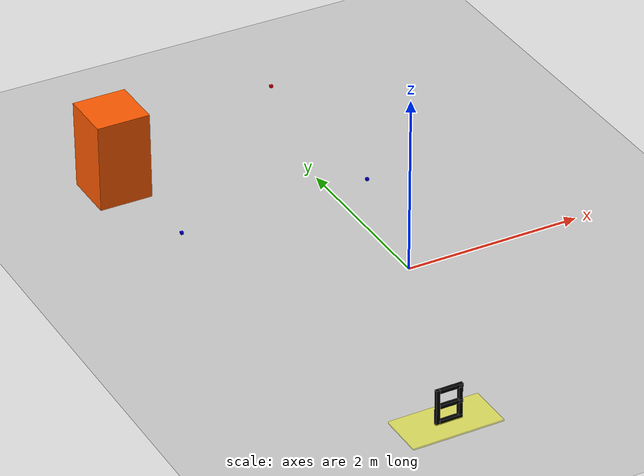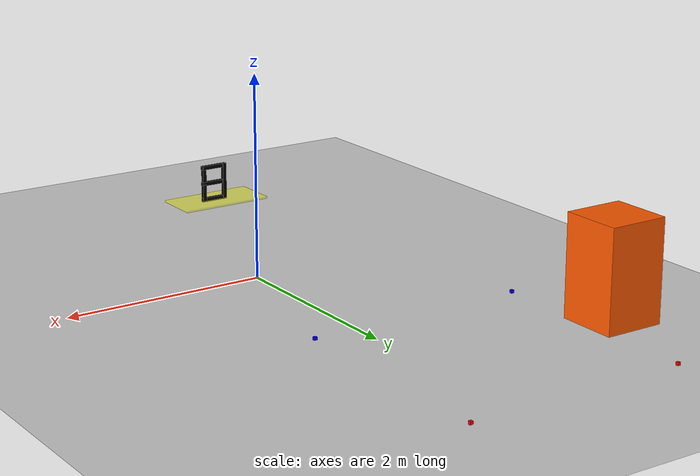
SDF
<sdf version="1.7">
 <world name="my_world">
  <model name="ground_plane">
   <static>1</static>
   <link name="link">
    <collision name="collision">
     <geometry><plane><normal>0 0 1</normal><size>100 100</size></plane></geometry>
     <surface>
      <contact><collide_bitmask>65535</collide_bitmask></contact>
      <friction><ode><mu>100</mu><mu2>50</mu2></ode></friction>
     </surface>
    </collision>
    <visual name="visual">
     <cast_shadows>0</cast_shadows>
     <geometry><plane><normal>0 0 1</normal><size>100 100</size></plane></geometry>
     <material>
      <script><uri>file://media/materials/scripts/gazebo.material</uri><name>Gazebo/Grey</name></script>
     </material>
    </visual>
   </link>
  </model>
  <model name="red_cube_4">
   <pose>-1.75 3.9 0.015 -2.2e-05 3e-06 0</pose>
   <link name="link">
    <inertial>
     <mass>0.005</mass>
     <inertia><ixx>1</ixx><ixy>0</ixy><ixz>0</ixz><iyy>1</iyy><iyz>0</iyz><izz>1</izz></inertia>
    </inertial>
    <collision name="collision">
     <geometry><box><size>0.03 0.03 0.03</size></box></geometry>
     <surface>
      <friction><ode><mu>0.1</mu><mu2>0.1</mu2></ode></friction>
      <contact><ode><kp>10000</kp><kd>10</kd><max_vel>0.01</max_vel><min_depth>0.02</min_depth></ode></contact>
     </surface>
    </collision>
    <visual name="visual">
     <geometry><box><size>0.03 0.03 0.03</size></box></geometry>
     <material><ambient>1 0 0 1</ambient><diffuse>1 0 0 1</diffuse></material>
    </visual>
   </link>
  </model>
  <model name="red_cube_5">
   <pose>0.45 3.9 0.015 -2.2e-05 3e-06 0</pose>
   <link name="link">
    <inertial>
     <mass>0.005</mass>
     <inertia><ixx>1</ixx><ixy>0</ixy><ixz>0</ixz><iyy>1</iyy><iyz>0</iyz><izz>1</izz></inertia>
    </inertial>
    <collision name="collision">
     <geometry><box><size>0.03 0.03 0.03</size></box></geometry>
     <surface>
      <friction><ode><mu>0.1</mu><mu2>0.1</mu2></ode></friction>
      <contact><ode><kp>10000</kp><kd>10</kd><max_vel>0.01</max_vel><min_depth>0.02</min_depth></ode></contact>
     </surface>
    </collision>
    <visual name="visual">
     <geometry><box><size>0.03 0.03 0.03</size></box></geometry>
     <material><ambient>1 0 0 1</ambient><diffuse>1 0 0 1</diffuse></material>
    </visual>
   </link>
  </model>
  <model name="blue_cube_4">
   <pose>-1.75 1.7 0.015 -2.2e-05 3e-06 0</pose>
   <link name="link">
    <inertial>
     <mass>0.005</mass>
     <inertia><ixx>1</ixx><ixy>0</ixy><ixz>0</ixz><iyy>1</iyy><iyz>0</iyz><izz>1</izz></inertia>
    </inertial>
    <collision name="collision">
     <geometry><box><size>0.03 0.03 0.03</size></box></geometry>
     <surface>
      <friction><ode><mu>0.1</mu><mu2>0.1</mu2></ode></friction>
      <contact><ode><kp>10000</kp><kd>10</kd><max_vel>0.01</max_vel><min_depth>0.02</min_depth></ode></contact>
     </surface>
    </collision>
    <visual name="visual">
     <geometry><box><size>0.03 0.03 0.03</size></box></geometry>
     <material><ambient>0 0 1 1</ambient><diffuse>0 0 1 1</diffuse></material>
    </visual>
   </link>
  </model>
  <model name="blue_cube_5">
   <pose>0.45 1.7 0.015 -2.2e-05 3e-06 0</pose>
   <link name="link">
    <inertial>
     <mass>0.005</mass>
     <inertia><ixx>1</ixx><ixy>0</ixy><ixz>0</ixz><iyy>1</iyy><iyz>0</iyz><izz>1</izz></inertia>
    </inertial>
    <collision name="collision">
     <geometry><box><size>0.03 0.03 0.03</size></box></geometry>
     <surface>
      <friction><ode><mu>0.1</mu><mu2>0.1</mu2></ode></friction>
      <contact><ode><kp>10000</kp><kd>10</kd><max_vel>0.01</max_vel><min_depth>0.02</min_depth></ode></contact>
     </surface>
    </collision>
    <visual name="visual">
     <geometry><box><size>0.03 0.03 0.03</size></box></geometry>
     <material><ambient>0 0 1 1</ambient><diffuse>0 0 1 1</diffuse></material>
    </visual>
   </link>
  </model>
  <model name="zone_b">
   <static>1</static>
   <pose>-1 -2.5 0.01 0 -0 0</pose>
   <link name="base">
    <visual name="visual">
     <geometry><box><size>1 0.5 0.02</size></box></geometry>
     <material><ambient>1 1 0 0.5</ambient><diffuse>1 1 0 0.5</diffuse></material>
    </visual>
   </link>
   <link name="letter_B_vertical_stroke">
    <pose>-0.1 0 0.2 0 -0 0</pose>
    <visual name="v">
     <geometry><box><size>0.04 0.04 0.4</size></box></geometry>
     <material><ambient>0 0 0 1</ambient><diffuse>0 0 0 1</diffuse></material>
    </visual>
   </link>
   <link name="letter_B_top_horizontal">
    <pose>0.05 0 0.38 0 -0 0</pose>
    <visual name="v">
     <geometry><box><size>0.25 0.04 0.04</size></box></geometry>
     <material><ambient>0 0 0 1</ambient><diffuse>0 0 0 1</diffuse></material>
    </visual>
   </link>
   <link name="letter_B_middle_horizontal">
    <pose>0.05 0 0.2 0 -0 0</pose>
    <visual name="v">
     <geometry><box><size>0.25 0.04 0.04</size></box></geometry>
     <material><ambient>0 0 0 1</ambient><diffuse>0 0 0 1</diffuse></material>
    </visual>
   </link>
   <link name="letter_B_bottom_horizontal">
    <pose>0.05 0 0.02 0 -0 0</pose>
    <visual name="v">
     <geometry><box><size>0.25 0.04 0.04</size></box></geometry>
     <material><ambient>0 0 0 1</ambient><diffuse>0 0 0 1</diffuse></material>
    </visual>
   </link>
   <link name="letter_B_top_vertical_stroke">
    <pose>0.15 0 0.29 0 -0 0</pose>
    <visual name="v">
     <geometry><box><size>0.04 0.04 0.2</size></box></geometry>
     <material><ambient>0 0 0 1</ambient><diffuse>0 0 0 1</diffuse></material>
    </visual>
   </link>
   <link name="letter_B_bottom_vertical_stroke">
    <pose>0.15 0 0.11 0 -0 0</pose>
    <visual name="v">
     <geometry><box><size>0.04 0.04 0.2</size></box></geometry>
     <material><ambient>0 0 0 1</ambient><diffuse>0 0 0 1</diffuse></material>
    </visual>
   </link>
  </model>
  <model name="moving_obstacle_1">
   <pose>-2.0 2.8 0.505 0 0 0</pose>
   <link name="link">
    <inertial>
     <mass>0.35</mass>
     <inertia><ixx>0.008</ixx><ixy>0.0</ixy><ixz>0.0</ixz><iyy>0.008</iyy><iyz>0.0</iyz><izz>0.004</izz></inertia>
    </inertial>
    <collision name="collision">
     <geometry><box><size>0.60 0.60 1.00</size></box></geometry>
     <surface>
      <friction><ode><mu>0.05</mu><mu2>0.05</mu2></ode></friction>
      <bounce><restitution_coefficient>0.0</restitution_coefficient><threshold>100000.0</threshold></bounce>
      <contact>
       <ode><kp>100000.0</kp><kd>1000.0</kd><max_vel>0.02</max_vel><min_depth>0.001</min_depth></ode>
      </contact>
     </surface>
    </collision>
    <visual name="visual">
     <geometry><box><size>0.60 0.60 1.00</size></box></geometry>
     <material><ambient>1.0 0.55 0.0 1.0</ambient><diffuse>1.0 0.35 0.0 1.0</diffuse></material>
    </visual>
   </link>
   <plugin name="moving_obstacle_1_simple_move" filename="libsimple_move_plugin.so">
    <speed>0.18</speed>
    <force>3.0</force>
    <pose_publish_rate>10.0</pose_publish_rate>
    <stop_distance>1.15</stop_distance>
    <resume_distance>1.45</resume_distance>
    <emergency_stop_distance>0.78</emergency_stop_distance>
    <route_restore_gain>2.5</route_restore_gain>
    <route_restore_speed>0.22</route_restore_speed>
    <max_cross_track_error>0.12</max_cross_track_error>
    <endpoint_tolerance>0.03</endpoint_tolerance>
    <slowdown_distance>0.30</slowdown_distance>
    <start_x>-2.0</start_x>
    <start_y>2.8</start_y>
    <end_x>1.0</end_x>
    <end_y>2.8</end_y>
   </plugin>
  </model>
 </world>
</sdf>
